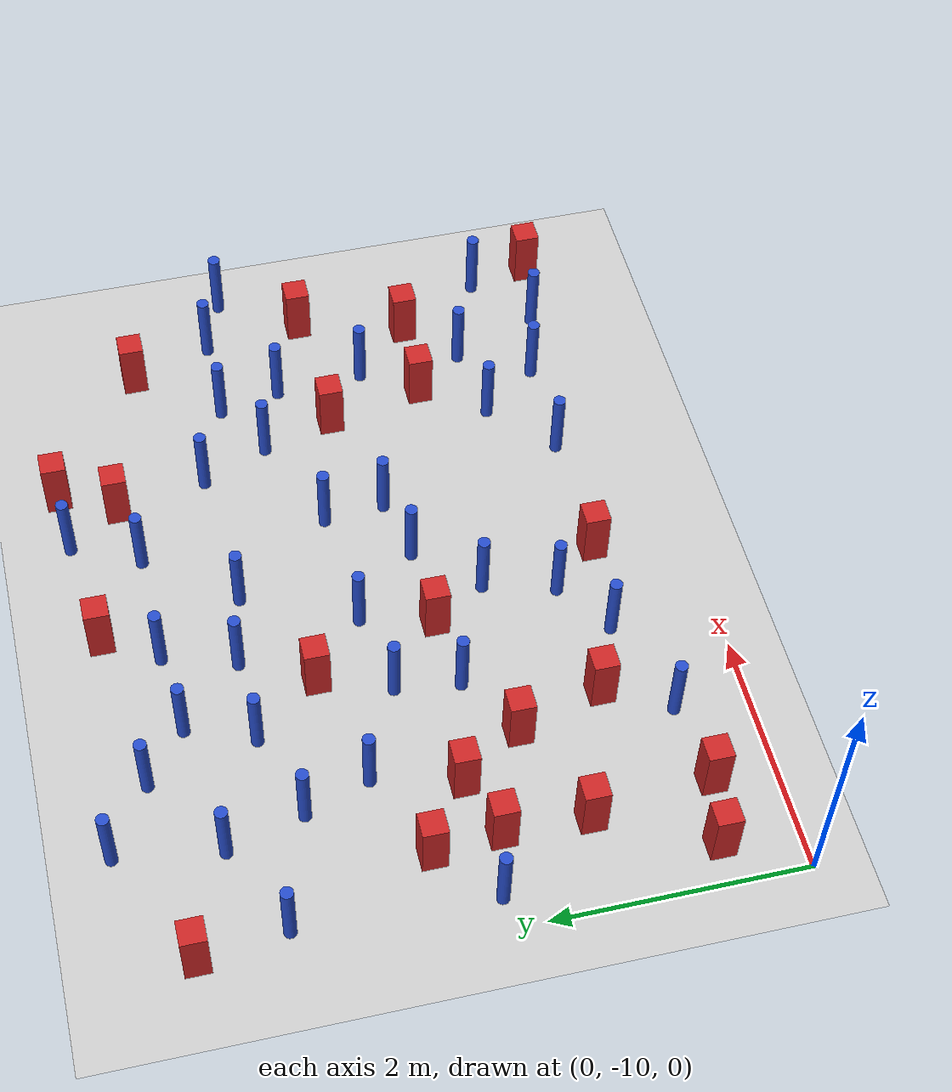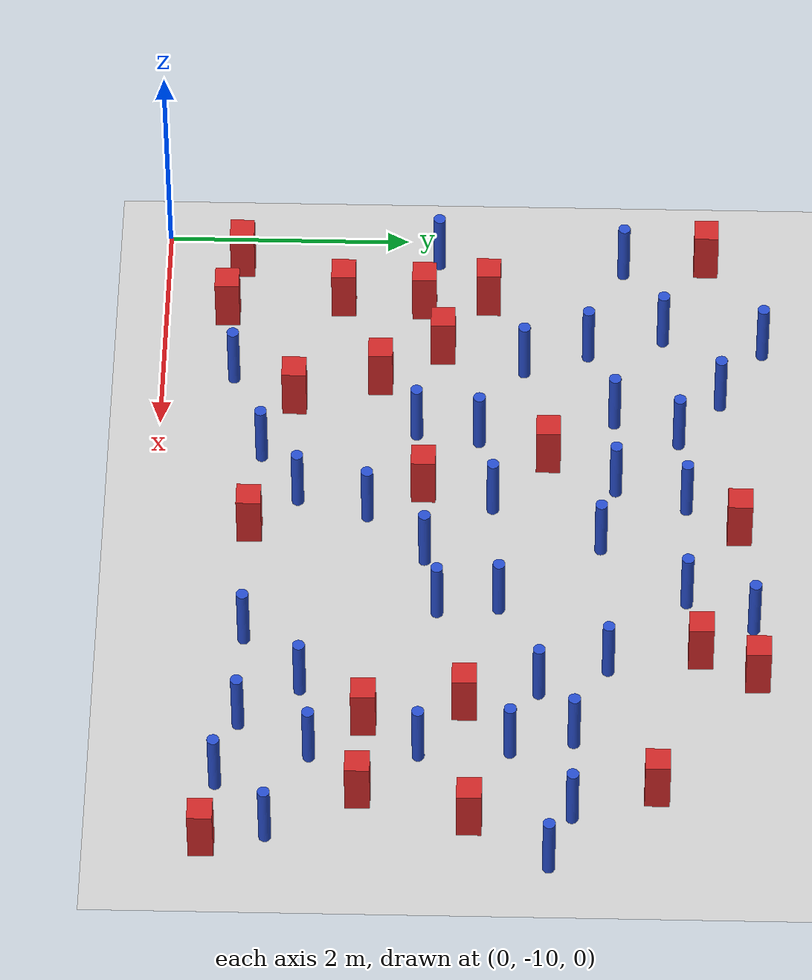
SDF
<sdf version="1.6">
 <world name="default">
  <model name="ground_plane">
   <static>1</static>
   <link name="link">
    <collision name="collision">
     <geometry><plane><normal>0 0 1</normal><size>100 100</size></plane></geometry>
     <surface><friction><ode><mu>100</mu><mu2>50</mu2></ode></friction></surface>
    </collision>
    <visual name="visual">
     <cast_shadows>0</cast_shadows>
     <geometry><plane><normal>0 0 1</normal><size>100 100</size></plane></geometry>
     <material>
      <ambient>1.0 1.0 1.0 1.0</ambient>
      <diffuse>0.8 0.8 0.8 1.0</diffuse>
      <specular>0.01 0.01 0.01 1.000000</specular>
     </material>
    </visual>
   </link>
  </model>
  <model name="pole_obstacle2">
   <static>true</static>
   <pose>2.84008630168 -5.65758874039 2.88873142074e-08 -9.90536689859e-09 4.60219948989e-07 -1.20965994961e-07</pose>
   <link name="link">
    <pose>0 0 0.3 0 -0 0</pose>
    <inertial>
     <mass>1</mass>
     <inertia><ixx>0.145833</ixx><ixy>0</ixy><ixz>0</ixz><iyy>0.145833</iyy><iyz>0</iyz><izz>0.125</izz></inertia>
    </inertial>
    <collision name="collision">
     <geometry><cylinder><radius>0.05</radius><length>.6</length></cylinder></geometry>
    </collision>
    <visual name="visual">
     <geometry><cylinder><radius>0.05</radius><length>.6</length></cylinder></geometry>
     <material>
      <script><name>Gazebo/Blue</name><uri>file://media/materials/scripts/gazebo.material</uri></script>
     </material>
    </visual>
   </link>
  </model>
  <model name="pole_obstacle4">
   <static>true</static>
   <pose>3.80544619655 -5.65283648893 2.88873142074e-08 -9.90536689859e-09 4.60219948989e-07 -1.20965994961e-07</pose>
   <link name="link">
    <pose>0 0 0.3 0 -0 0</pose>
    <inertial>
     <mass>1</mass>
     <inertia><ixx>0.145833</ixx><ixy>0</ixy><ixz>0</ixz><iyy>0.145833</iyy><iyz>0</iyz><izz>0.125</izz></inertia>
    </inertial>
    <collision name="collision">
     <geometry><cylinder><radius>0.05</radius><length>.6</length></cylinder></geometry>
    </collision>
    <visual name="visual">
     <geometry><cylinder><radius>0.05</radius><length>.6</length></cylinder></geometry>
     <material>
      <script><name>Gazebo/Blue</name><uri>file://media/materials/scripts/gazebo.material</uri></script>
     </material>
    </visual>
   </link>
  </model>
  <model name="pole_obstacle14">
   <static>true</static>
   <pose>3.40435855166 -7.7819171107 2.88873142074e-08 -9.90536689859e-09 4.60219948989e-07 -1.20965994961e-07</pose>
   <link name="link">
    <pose>0 0 0.3 0 -0 0</pose>
    <inertial>
     <mass>1</mass>
     <inertia><ixx>0.145833</ixx><ixy>0</ixy><ixz>0</ixz><iyy>0.145833</iyy><iyz>0</iyz><izz>0.125</izz></inertia>
    </inertial>
    <collision name="collision">
     <geometry><cylinder><radius>0.05</radius><length>.6</length></cylinder></geometry>
    </collision>
    <visual name="visual">
     <geometry><cylinder><radius>0.05</radius><length>.6</length></cylinder></geometry>
     <material>
      <script><name>Gazebo/Blue</name><uri>file://media/materials/scripts/gazebo.material</uri></script>
     </material>
    </visual>
   </link>
  </model>
  <model name="pole_obstacle16">
   <static>true</static>
   <pose>5.23208228533 -6.54759362288 2.88873142074e-08 -9.90536690842e-09 4.60219948965e-07 -1.20965994976e-07</pose>
   <link name="link">
    <pose>0 0 0.3 0 -0 0</pose>
    <inertial>
     <mass>1</mass>
     <inertia><ixx>0.145833</ixx><ixy>0</ixy><ixz>0</ixz><iyy>0.145833</iyy><iyz>0</iyz><izz>0.125</izz></inertia>
    </inertial>
    <collision name="collision">
     <geometry><cylinder><radius>0.05</radius><length>.6</length></cylinder></geometry>
    </collision>
    <visual name="visual">
     <geometry><cylinder><radius>0.05</radius><length>.6</length></cylinder></geometry>
     <material>
      <script><name>Gazebo/Blue</name><uri>file://media/materials/scripts/gazebo.material</uri></script>
     </material>
    </visual>
   </link>
  </model>
  <model name="pole_obstacle19">
   <static>true</static>
   <pose>1.94531949318 -6.25430891108 2.88873142074e-08 -9.90536689852e-09 4.60219948989e-07 -1.2096599496e-07</pose>
   <link name="link">
    <pose>0 0 0.3 0 -0 0</pose>
    <inertial>
     <mass>1</mass>
     <inertia><ixx>0.145833</ixx><ixy>0</ixy><ixz>0</ixz><iyy>0.145833</iyy><iyz>0</iyz><izz>0.125</izz></inertia>
    </inertial>
    <collision name="collision">
     <geometry><cylinder><radius>0.05</radius><length>.6</length></cylinder></geometry>
    </collision>
    <visual name="visual">
     <geometry><cylinder><radius>0.05</radius><length>.6</length></cylinder></geometry>
     <material>
      <script><name>Gazebo/Blue</name><uri>file://media/materials/scripts/gazebo.material</uri></script>
     </material>
    </visual>
   </link>
  </model>
  <model name="square_post_obstacle21">
   <static>true</static>
   <pose>5.08526483894 -8.22849400059 8.22691968438e-08 7.2212513382e-06 -7.54495500217e-07 2.29674213826e-05</pose>
   <link name="link">
    <pose>0 0 0.25 0 -0 0</pose>
    <inertial>
     <mass>100</mass>
     <inertia>
      <ixx>0.166667</ixx>
      <ixy>0</ixy>
      <ixz>0</ixz>
      <iyy>0.166667</iyy>
      <iyz>0</iyz>
      <izz>0.166667</izz>
     </inertia>
    </inertial>
    <collision name="collision"><geometry><box><size>.2 .2 .5</size></box></geometry></collision>
    <visual name="visual">
     <geometry><box><size>.2 .2 .5</size></box></geometry>
     <material>
      <script><name>Gazebo/Red</name><uri>file://media/materials/scripts/gazebo.material</uri></script>
     </material>
    </visual>
   </link>
  </model>
  <model name="square_post_obstacle23">
   <static>true</static>
   <pose>0.841744453199 -9.48429340773 8.22691968438e-08 7.22125133819e-06 -7.54495500217e-07 2.29674213826e-05</pose>
   <link name="link">
    <pose>0 0 0.25 0 -0 0</pose>
    <inertial>
     <mass>100</mass>
     <inertia>
      <ixx>0.166667</ixx>
      <ixy>0</ixy>
      <ixz>0</ixz>
      <iyy>0.166667</iyy>
      <iyz>0</iyz>
      <izz>0.166667</izz>
     </inertia>
    </inertial>
    <collision name="collision"><geometry><box><size>.2 .2 .5</size></box></geometry></collision>
    <visual name="visual">
     <geometry><box><size>.2 .2 .5</size></box></geometry>
     <material>
      <script><name>Gazebo/Red</name><uri>file://media/materials/scripts/gazebo.material</uri></script>
     </material>
    </visual>
   </link>
  </model>
  <model name="pole_obstacle32">
   <static>true</static>
   <pose>1.2296111837 -6.47852823251 2.88873142074e-08 -9.90536689852e-09 4.60219948989e-07 -1.2096599496e-07</pose>
   <link name="link">
    <pose>0 0 0.3 0 -0 0</pose>
    <inertial>
     <mass>1</mass>
     <inertia><ixx>0.145833</ixx><ixy>0</ixy><ixz>0</ixz><iyy>0.145833</iyy><iyz>0</iyz><izz>0.125</izz></inertia>
    </inertial>
    <collision name="collision">
     <geometry><cylinder><radius>0.05</radius><length>.6</length></cylinder></geometry>
    </collision>
    <visual name="visual">
     <geometry><cylinder><radius>0.05</radius><length>.6</length></cylinder></geometry>
     <material>
      <script><name>Gazebo/Blue</name><uri>file://media/materials/scripts/gazebo.material</uri></script>
     </material>
    </visual>
   </link>
  </model>
  <model name="square_post_obstacle29">
   <static>true</static>
   <pose>3.09581277703 -5.22648343051 8.22691968438e-08 7.2212513382e-06 -7.54495500217e-07 2.29674213826e-05</pose>
   <link name="link">
    <pose>0 0 0.25 0 -0 0</pose>
    <inertial>
     <mass>100</mass>
     <inertia>
      <ixx>0.166667</ixx>
      <ixy>0</ixy>
      <ixz>0</ixz>
      <iyy>0.166667</iyy>
      <iyz>0</iyz>
      <izz>0.166667</izz>
     </inertia>
    </inertial>
    <collision name="collision"><geometry><box><size>.2 .2 .5</size></box></geometry></collision>
    <visual name="visual">
     <geometry><box><size>.2 .2 .5</size></box></geometry>
     <material>
      <script><name>Gazebo/Red</name><uri>file://media/materials/scripts/gazebo.material</uri></script>
     </material>
    </visual>
   </link>
  </model>
  <model name="square_post_obstacle34">
   <static>true</static>
   <pose>6.04992247892 -7.36563365238 8.22691968438e-08 7.22125133819e-06 -7.54495500217e-07 2.29674213826e-05</pose>
   <link name="link">
    <pose>0 0 0.25 0 -0 0</pose>
    <inertial>
     <mass>100</mass>
     <inertia>
      <ixx>0.166667</ixx>
      <ixy>0</ixy>
      <ixz>0</ixz>
      <iyy>0.166667</iyy>
      <iyz>0</iyz>
      <izz>0.166667</izz>
     </inertia>
    </inertial>
    <collision name="collision"><geometry><box><size>.2 .2 .5</size></box></geometry></collision>
    <visual name="visual">
     <geometry><box><size>.2 .2 .5</size></box></geometry>
     <material>
      <script><name>Gazebo/Red</name><uri>file://media/materials/scripts/gazebo.material</uri></script>
     </material>
    </visual>
   </link>
  </model>
  <model name="square_post_obstacle35">
   <static>true</static>
   <pose>1.78558966195 -8.89482108866 8.22691968438e-08 7.22125133819e-06 -7.54495500217e-07 2.29674213826e-05</pose>
   <link name="link">
    <pose>0 0 0.25 0 -0 0</pose>
    <inertial>
     <mass>100</mass>
     <inertia>
      <ixx>0.166667</ixx>
      <ixy>0</ixy>
      <ixz>0</ixz>
      <iyy>0.166667</iyy>
      <iyz>0</iyz>
      <izz>0.166667</izz>
     </inertia>
    </inertial>
    <collision name="collision"><geometry><box><size>.2 .2 .5</size></box></geometry></collision>
    <visual name="visual">
     <geometry><box><size>.2 .2 .5</size></box></geometry>
     <material>
      <script><name>Gazebo/Red</name><uri>file://media/materials/scripts/gazebo.material</uri></script>
     </material>
    </visual>
   </link>
  </model>
  <model name="pole_obstacle46">
   <static>true</static>
   <pose>2.96377807754 -8.25905966666 2.88873142074e-08 -9.90536692318e-09 4.6021994893e-07 -1.20965994988e-07</pose>
   <link name="link">
    <pose>0 0 0.3 0 -0 0</pose>
    <inertial>
     <mass>1</mass>
     <inertia><ixx>0.145833</ixx><ixy>0</ixy><ixz>0</ixz><iyy>0.145833</iyy><iyz>0</iyz><izz>0.125</izz></inertia>
    </inertial>
    <collision name="collision">
     <geometry><cylinder><radius>0.05</radius><length>.6</length></cylinder></geometry>
    </collision>
    <visual name="visual">
     <geometry><cylinder><radius>0.05</radius><length>.6</length></cylinder></geometry>
     <material>
      <script><name>Gazebo/Blue</name><uri>file://media/materials/scripts/gazebo.material</uri></script>
     </material>
    </visual>
   </link>
  </model>
  <model name="square_post_obstacle39">
   <static>true</static>
   <pose>6.29553907464 -9.47275370029 8.22691968438e-08 7.2212513382e-06 -7.54495500217e-07 2.29674213826e-05</pose>
   <link name="link">
    <pose>0 0 0.25 0 -0 0</pose>
    <inertial>
     <mass>100</mass>
     <inertia>
      <ixx>0.166667</ixx>
      <ixy>0</ixy>
      <ixz>0</ixz>
      <iyy>0.166667</iyy>
      <iyz>0</iyz>
      <izz>0.166667</izz>
     </inertia>
    </inertial>
    <collision name="collision"><geometry><box><size>.2 .2 .5</size></box></geometry></collision>
    <visual name="visual">
     <geometry><box><size>.2 .2 .5</size></box></geometry>
     <material>
      <script><name>Gazebo/Red</name><uri>file://media/materials/scripts/gazebo.material</uri></script>
     </material>
    </visual>
   </link>
  </model>
  <model name="square_post_obstacle45">
   <static>true</static>
   <pose>4.5947123602 -5.08160202083 8.22691968438e-08 7.2212513382e-06 -7.54495500217e-07 2.29674213826e-05</pose>
   <link name="link">
    <pose>0 0 0.25 0 -0 0</pose>
    <inertial>
     <mass>100</mass>
     <inertia>
      <ixx>0.166667</ixx>
      <ixy>0</ixy>
      <ixz>0</ixz>
      <iyy>0.166667</iyy>
      <iyz>0</iyz>
      <izz>0.166667</izz>
     </inertia>
    </inertial>
    <collision name="collision"><geometry><box><size>.2 .2 .5</size></box></geometry></collision>
    <visual name="visual">
     <geometry><box><size>.2 .2 .5</size></box></geometry>
     <material>
      <script><name>Gazebo/Red</name><uri>file://media/materials/scripts/gazebo.material</uri></script>
     </material>
    </visual>
   </link>
  </model>
  <model name="square_post_obstacle46">
   <static>true</static>
   <pose>1.22898314889 -7.68098912082 8.22691968438e-08 7.2212513382e-06 -7.54495500217e-07 2.29674213826e-05</pose>
   <link name="link">
    <pose>0 0 0.25 0 -0 0</pose>
    <inertial>
     <mass>100</mass>
     <inertia>
      <ixx>0.166667</ixx>
      <ixy>0</ixy>
      <ixz>0</ixz>
      <iyy>0.166667</iyy>
      <iyz>0</iyz>
      <izz>0.166667</izz>
     </inertia>
    </inertial>
    <collision name="collision"><geometry><box><size>.2 .2 .5</size></box></geometry></collision>
    <visual name="visual">
     <geometry><box><size>.2 .2 .5</size></box></geometry>
     <material>
      <script><name>Gazebo/Red</name><uri>file://media/materials/scripts/gazebo.material</uri></script>
     </material>
    </visual>
   </link>
  </model>
  <model name="pole_obstacle66">
   <static>true</static>
   <pose>1.18282865238 -5.03434609527 2.88873142074e-08 -9.90536689852e-09 4.60219948989e-07 -1.2096599496e-07</pose>
   <link name="link">
    <pose>0 0 0.3 0 -0 0</pose>
    <inertial>
     <mass>1</mass>
     <inertia><ixx>0.145833</ixx><ixy>0</ixy><ixz>0</ixz><iyy>0.145833</iyy><iyz>0</iyz><izz>0.125</izz></inertia>
    </inertial>
    <collision name="collision">
     <geometry><cylinder><radius>0.05</radius><length>.6</length></cylinder></geometry>
    </collision>
    <visual name="visual">
     <geometry><cylinder><radius>0.05</radius><length>.6</length></cylinder></geometry>
     <material>
      <script><name>Gazebo/Blue</name><uri>file://media/materials/scripts/gazebo.material</uri></script>
     </material>
    </visual>
   </link>
  </model>
  <model name="square_post_obstacle55">
   <static>true</static>
   <pose>4.91738649186 -7.42713990306 8.22691968438e-08 7.22125133819e-06 -7.54495500217e-07 2.29674213826e-05</pose>
   <link name="link">
    <pose>0 0 0.25 0 -0 0</pose>
    <inertial>
     <mass>100</mass>
     <inertia>
      <ixx>0.166667</ixx>
      <ixy>0</ixy>
      <ixz>0</ixz>
      <iyy>0.166667</iyy>
      <iyz>0</iyz>
      <izz>0.166667</izz>
     </inertia>
    </inertial>
    <collision name="collision"><geometry><box><size>.2 .2 .5</size></box></geometry></collision>
    <visual name="visual">
     <geometry><box><size>.2 .2 .5</size></box></geometry>
     <material>
      <script><name>Gazebo/Red</name><uri>file://media/materials/scripts/gazebo.material</uri></script>
     </material>
    </visual>
   </link>
  </model>
  <model name="pole_obstacle69">
   <static>true</static>
   <pose>3.89376762896 -7.17106317651 2.88873142074e-08 -9.90536689859e-09 4.60219948989e-07 -1.20965994961e-07</pose>
   <link name="link">
    <pose>0 0 0.3 0 -0 0</pose>
    <inertial>
     <mass>1</mass>
     <inertia><ixx>0.145833</ixx><ixy>0</ixy><ixz>0</ixz><iyy>0.145833</iyy><iyz>0</iyz><izz>0.125</izz></inertia>
    </inertial>
    <collision name="collision">
     <geometry><cylinder><radius>0.05</radius><length>.6</length></cylinder></geometry>
    </collision>
    <visual name="visual">
     <geometry><cylinder><radius>0.05</radius><length>.6</length></cylinder></geometry>
     <material>
      <script><name>Gazebo/Blue</name><uri>file://media/materials/scripts/gazebo.material</uri></script>
     </material>
    </visual>
   </link>
  </model>
  <model name="pole_obstacle82">
   <static>true</static>
   <pose>4.06178586434 -5.11034556013 2.88873142074e-08 -9.90536690842e-09 4.60219948965e-07 -1.20965994976e-07</pose>
   <link name="link">
    <pose>0 0 0.3 0 -0 0</pose>
    <inertial>
     <mass>1</mass>
     <inertia><ixx>0.145833</ixx><ixy>0</ixy><ixz>0</ixz><iyy>0.145833</iyy><iyz>0</iyz><izz>0.125</izz></inertia>
    </inertial>
    <collision name="collision">
     <geometry><cylinder><radius>0.05</radius><length>.6</length></cylinder></geometry>
    </collision>
    <visual name="visual">
     <geometry><cylinder><radius>0.05</radius><length>.6</length></cylinder></geometry>
     <material>
      <script><name>Gazebo/Blue</name><uri>file://media/materials/scripts/gazebo.material</uri></script>
     </material>
    </visual>
   </link>
  </model>
  <model name="square_post_obstacle72">
   <static>true</static>
   <pose>5.80596797932 -8.25402476666 8.22691968438e-08 7.22125133819e-06 -7.54495500217e-07 2.29674213826e-05</pose>
   <link name="link">
    <pose>0 0 0.25 0 -0 0</pose>
    <inertial>
     <mass>100</mass>
     <inertia>
      <ixx>0.166667</ixx>
      <ixy>0</ixy>
      <ixz>0</ixz>
      <iyy>0.166667</iyy>
      <iyz>0</iyz>
      <izz>0.166667</izz>
     </inertia>
    </inertial>
    <collision name="collision"><geometry><box><size>.2 .2 .5</size></box></geometry></collision>
    <visual name="visual">
     <geometry><box><size>.2 .2 .5</size></box></geometry>
     <material>
      <script><name>Gazebo/Red</name><uri>file://media/materials/scripts/gazebo.material</uri></script>
     </material>
    </visual>
   </link>
  </model>
  <model name="pole_obstacle86">
   <static>true</static>
   <pose>1.73590130407 -5.38383068421 2.88873142074e-08 -9.90536689852e-09 4.60219948989e-07 -1.2096599496e-07</pose>
   <link name="link">
    <pose>0 0 0.3 0 -0 0</pose>
    <inertial>
     <mass>1</mass>
     <inertia><ixx>0.145833</ixx><ixy>0</ixy><ixz>0</ixz><iyy>0.145833</iyy><iyz>0</iyz><izz>0.125</izz></inertia>
    </inertial>
    <collision name="collision">
     <geometry><cylinder><radius>0.05</radius><length>.6</length></cylinder></geometry>
    </collision>
    <visual name="visual">
     <geometry><cylinder><radius>0.05</radius><length>.6</length></cylinder></geometry>
     <material>
      <script><name>Gazebo/Blue</name><uri>file://media/materials/scripts/gazebo.material</uri></script>
     </material>
    </visual>
   </link>
  </model>
  <model name="square_post_obstacle74">
   <static>true</static>
   <pose>1.56864107724 -8.18955456679 8.22691968438e-08 7.2212513382e-06 -7.54495500217e-07 2.29674213826e-05</pose>
   <link name="link">
    <pose>0 0 0.25 0 -0 0</pose>
    <inertial>
     <mass>100</mass>
     <inertia>
      <ixx>0.166667</ixx>
      <ixy>0</ixy>
      <ixz>0</ixz>
      <iyy>0.166667</iyy>
      <iyz>0</iyz>
      <izz>0.166667</izz>
     </inertia>
    </inertial>
    <collision name="collision"><geometry><box><size>.2 .2 .5</size></box></geometry></collision>
    <visual name="visual">
     <geometry><box><size>.2 .2 .5</size></box></geometry>
     <material>
      <script><name>Gazebo/Red</name><uri>file://media/materials/scripts/gazebo.material</uri></script>
     </material>
    </visual>
   </link>
  </model>
  <model name="pole_obstacle97">
   <static>true</static>
   <pose>1.05455284366 -5.85942085139 2.88873142074e-08 -9.90536689852e-09 4.60219948989e-07 -1.2096599496e-07</pose>
   <link name="link">
    <pose>0 0 0.3 0 -0 0</pose>
    <inertial>
     <mass>1</mass>
     <inertia><ixx>0.145833</ixx><ixy>0</ixy><ixz>0</ixz><iyy>0.145833</iyy><iyz>0</iyz><izz>0.125</izz></inertia>
    </inertial>
    <collision name="collision">
     <geometry><cylinder><radius>0.05</radius><length>.6</length></cylinder></geometry>
    </collision>
    <visual name="visual">
     <geometry><cylinder><radius>0.05</radius><length>.6</length></cylinder></geometry>
     <material>
      <script><name>Gazebo/Blue</name><uri>file://media/materials/scripts/gazebo.material</uri></script>
     </material>
    </visual>
   </link>
  </model>
  <model name="pole_obstacle107">
   <static>true</static>
   <pose>0.328052993588 -6.19242650753 2.88873142074e-08 -9.90536689683e-09 4.60219948993e-07 -1.20965994957e-07</pose>
   <link name="link">
    <pose>0 0 0.3 0 -0 0</pose>
    <inertial>
     <mass>1</mass>
     <inertia><ixx>0.145833</ixx><ixy>0</ixy><ixz>0</ixz><iyy>0.145833</iyy><iyz>0</iyz><izz>0.125</izz></inertia>
    </inertial>
    <collision name="collision">
     <geometry><cylinder><radius>0.05</radius><length>.6</length></cylinder></geometry>
    </collision>
    <visual name="visual">
     <geometry><cylinder><radius>0.05</radius><length>.6</length></cylinder></geometry>
     <material>
      <script><name>Gazebo/Blue</name><uri>file://media/materials/scripts/gazebo.material</uri></script>
     </material>
    </visual>
   </link>
  </model>
  <model name="pole_obstacle120">
   <static>true</static>
   <pose>4.74679029108 -6.83493175907 2.88873142074e-08 -9.90536690842e-09 4.60219948965e-07 -1.20965994976e-07</pose>
   <link name="link">
    <pose>0 0 0.3 0 -0 0</pose>
    <inertial>
     <mass>1</mass>
     <inertia><ixx>0.145833</ixx><ixy>0</ixy><ixz>0</ixz><iyy>0.145833</iyy><iyz>0</iyz><izz>0.125</izz></inertia>
    </inertial>
    <collision name="collision">
     <geometry><cylinder><radius>0.05</radius><length>.6</length></cylinder></geometry>
    </collision>
    <visual name="visual">
     <geometry><cylinder><radius>0.05</radius><length>.6</length></cylinder></geometry>
     <material>
      <script><name>Gazebo/Blue</name><uri>file://media/materials/scripts/gazebo.material</uri></script>
     </material>
    </visual>
   </link>
  </model>
  <model name="pole_obstacle121">
   <static>true</static>
   <pose>5.38310847871 -7.7849077942 2.88873142074e-08 -9.90536690842e-09 4.60219948965e-07 -1.20965994976e-07</pose>
   <link name="link">
    <pose>0 0 0.3 0 -0 0</pose>
    <inertial>
     <mass>1</mass>
     <inertia><ixx>0.145833</ixx><ixy>0</ixy><ixz>0</ixz><iyy>0.145833</iyy><iyz>0</iyz><izz>0.125</izz></inertia>
    </inertial>
    <collision name="collision">
     <geometry><cylinder><radius>0.05</radius><length>.6</length></cylinder></geometry>
    </collision>
    <visual name="visual">
     <geometry><cylinder><radius>0.05</radius><length>.6</length></cylinder></geometry>
     <material>
      <script><name>Gazebo/Blue</name><uri>file://media/materials/scripts/gazebo.material</uri></script>
     </material>
    </visual>
   </link>
  </model>
  <model name="pole_obstacle132">
   <static>true</static>
   <pose>6.45531773007 -6.73112084194 2.88873142074e-08 -9.90536690842e-09 4.60219948965e-07 -1.20965994976e-07</pose>
   <link name="link">
    <pose>0 0 0.3 0 -0 0</pose>
    <inertial>
     <mass>1</mass>
     <inertia><ixx>0.145833</ixx><ixy>0</ixy><ixz>0</ixz><iyy>0.145833</iyy><iyz>0</iyz><izz>0.125</izz></inertia>
    </inertial>
    <collision name="collision">
     <geometry><cylinder><radius>0.05</radius><length>.6</length></cylinder></geometry>
    </collision>
    <visual name="visual">
     <geometry><cylinder><radius>0.05</radius><length>.6</length></cylinder></geometry>
     <material>
      <script><name>Gazebo/Blue</name><uri>file://media/materials/scripts/gazebo.material</uri></script>
     </material>
    </visual>
   </link>
  </model>
  <model name="square_post_obstacle129">
   <static>true</static>
   <pose>3.13543514272 -9.21570825471 8.22691968438e-08 7.22125133819e-06 -7.54495500217e-07 2.29674213826e-05</pose>
   <link name="link">
    <pose>0 0 0.25 0 -0 0</pose>
    <inertial>
     <mass>100</mass>
     <inertia>
      <ixx>0.166667</ixx>
      <ixy>0</ixy>
      <ixz>0</ixz>
      <iyy>0.166667</iyy>
      <iyz>0</iyz>
      <izz>0.166667</izz>
     </inertia>
    </inertial>
    <collision name="collision"><geometry><box><size>.2 .2 .5</size></box></geometry></collision>
    <visual name="visual">
     <geometry><box><size>.2 .2 .5</size></box></geometry>
     <material>
      <script><name>Gazebo/Red</name><uri>file://media/materials/scripts/gazebo.material</uri></script>
     </material>
    </visual>
   </link>
  </model>
  <model name="pole_obstacle144">
   <static>true</static>
   <pose>2.80312207108 -8.83302583959 2.88873142074e-08 -9.90536692318e-09 4.6021994893e-07 -1.20965994988e-07</pose>
   <link name="link">
    <pose>0 0 0.3 0 -0 0</pose>
    <inertial>
     <mass>1</mass>
     <inertia><ixx>0.145833</ixx><ixy>0</ixy><ixz>0</ixz><iyy>0.145833</iyy><iyz>0</iyz><izz>0.125</izz></inertia>
    </inertial>
    <collision name="collision">
     <geometry><cylinder><radius>0.05</radius><length>.6</length></cylinder></geometry>
    </collision>
    <visual name="visual">
     <geometry><cylinder><radius>0.05</radius><length>.6</length></cylinder></geometry>
     <material>
      <script><name>Gazebo/Blue</name><uri>file://media/materials/scripts/gazebo.material</uri></script>
     </material>
    </visual>
   </link>
  </model>
  <model name="square_post_obstacle141">
   <static>true</static>
   <pose>4.36318477662 -5.53927192102 8.22691968438e-08 7.22125133819e-06 -7.54495500217e-07 2.29674213826e-05</pose>
   <link name="link">
    <pose>0 0 0.25 0 -0 0</pose>
    <inertial>
     <mass>100</mass>
     <inertia>
      <ixx>0.166667</ixx>
      <ixy>0</ixy>
      <ixz>0</ixz>
      <iyy>0.166667</iyy>
      <iyz>0</iyz>
      <izz>0.166667</izz>
     </inertia>
    </inertial>
    <collision name="collision"><geometry><box><size>.2 .2 .5</size></box></geometry></collision>
    <visual name="visual">
     <geometry><box><size>.2 .2 .5</size></box></geometry>
     <material>
      <script><name>Gazebo/Red</name><uri>file://media/materials/scripts/gazebo.material</uri></script>
     </material>
    </visual>
   </link>
  </model>
  <model name="pole_obstacle148">
   <static>true</static>
   <pose>2.15333753356 -5.72256687438 2.88873142074e-08 -9.90536689859e-09 4.60219948989e-07 -1.20965994961e-07</pose>
   <link name="link">
    <pose>0 0 0.3 0 -0 0</pose>
    <inertial>
     <mass>1</mass>
     <inertia><ixx>0.145833</ixx><ixy>0</ixy><ixz>0</ixz><iyy>0.145833</iyy><iyz>0</iyz><izz>0.125</izz></inertia>
    </inertial>
    <collision name="collision">
     <geometry><cylinder><radius>0.05</radius><length>.6</length></cylinder></geometry>
    </collision>
    <visual name="visual">
     <geometry><cylinder><radius>0.05</radius><length>.6</length></cylinder></geometry>
     <material>
      <script><name>Gazebo/Blue</name><uri>file://media/materials/scripts/gazebo.material</uri></script>
     </material>
    </visual>
   </link>
  </model>
  <model name="square_post_obstacle152">
   <static>true</static>
   <pose>0.724720998658 -8.52001083608 8.22691968438e-08 7.22125133819e-06 -7.54495500217e-07 2.29674213826e-05</pose>
   <link name="link">
    <pose>0 0 0.25 0 -0 0</pose>
    <inertial>
     <mass>100</mass>
     <inertia>
      <ixx>0.166667</ixx>
      <ixy>0</ixy>
      <ixz>0</ixz>
      <iyy>0.166667</iyy>
      <iyz>0</iyz>
      <izz>0.166667</izz>
     </inertia>
    </inertial>
    <collision name="collision"><geometry><box><size>.2 .2 .5</size></box></geometry></collision>
    <visual name="visual">
     <geometry><box><size>.2 .2 .5</size></box></geometry>
     <material>
      <script><name>Gazebo/Red</name><uri>file://media/materials/scripts/gazebo.material</uri></script>
     </material>
    </visual>
   </link>
  </model>
  <model name="pole_obstacle163">
   <static>true</static>
   <pose>2.66015981724 -6.23687542651 2.88873142074e-08 -9.90536689859e-09 4.60219948989e-07 -1.20965994961e-07</pose>
   <link name="link">
    <pose>0 0 0.3 0 -0 0</pose>
    <inertial>
     <mass>1</mass>
     <inertia><ixx>0.145833</ixx><ixy>0</ixy><ixz>0</ixz><iyy>0.145833</iyy><iyz>0</iyz><izz>0.125</izz></inertia>
    </inertial>
    <collision name="collision">
     <geometry><cylinder><radius>0.05</radius><length>.6</length></cylinder></geometry>
    </collision>
    <visual name="visual">
     <geometry><cylinder><radius>0.05</radius><length>.6</length></cylinder></geometry>
     <material>
      <script><name>Gazebo/Blue</name><uri>file://media/materials/scripts/gazebo.material</uri></script>
     </material>
    </visual>
   </link>
  </model>
  <model name="pole_obstacle164">
   <static>true</static>
   <pose>2.09666196747 -7.87846331957 2.88873142074e-08 -9.90536689859e-09 4.60219948989e-07 -1.20965994961e-07</pose>
   <link name="link">
    <pose>0 0 0.3 0 -0 0</pose>
    <inertial>
     <mass>1</mass>
     <inertia><ixx>0.145833</ixx><ixy>0</ixy><ixz>0</ixz><iyy>0.145833</iyy><iyz>0</iyz><izz>0.125</izz></inertia>
    </inertial>
    <collision name="collision">
     <geometry><cylinder><radius>0.05</radius><length>.6</length></cylinder></geometry>
    </collision>
    <visual name="visual">
     <geometry><cylinder><radius>0.05</radius><length>.6</length></cylinder></geometry>
     <material>
      <script><name>Gazebo/Blue</name><uri>file://media/materials/scripts/gazebo.material</uri></script>
     </material>
    </visual>
   </link>
  </model>
  <model name="pole_obstacle169">
   <static>true</static>
   <pose>2.1654644331 -7.36292563188 2.88873142074e-08 -9.90536689859e-09 4.60219948989e-07 -1.20965994961e-07</pose>
   <link name="link">
    <pose>0 0 0.3 0 -0 0</pose>
    <inertial>
     <mass>1</mass>
     <inertia><ixx>0.145833</ixx><ixy>0</ixy><ixz>0</ixz><iyy>0.145833</iyy><iyz>0</iyz><izz>0.125</izz></inertia>
    </inertial>
    <collision name="collision">
     <geometry><cylinder><radius>0.05</radius><length>.6</length></cylinder></geometry>
    </collision>
    <visual name="visual">
     <geometry><cylinder><radius>0.05</radius><length>.6</length></cylinder></geometry>
     <material>
      <script><name>Gazebo/Blue</name><uri>file://media/materials/scripts/gazebo.material</uri></script>
     </material>
    </visual>
   </link>
  </model>
  <model name="pole_obstacle174">
   <static>true</static>
   <pose>2.86169717265 -7.23828473017 2.88873142074e-08 -9.90536689859e-09 4.60219948989e-07 -1.20965994961e-07</pose>
   <link name="link">
    <pose>0 0 0.3 0 -0 0</pose>
    <inertial>
     <mass>1</mass>
     <inertia><ixx>0.145833</ixx><ixy>0</ixy><ixz>0</ixz><iyy>0.145833</iyy><iyz>0</iyz><izz>0.125</izz></inertia>
    </inertial>
    <collision name="collision">
     <geometry><cylinder><radius>0.05</radius><length>.6</length></cylinder></geometry>
    </collision>
    <visual name="visual">
     <geometry><cylinder><radius>0.05</radius><length>.6</length></cylinder></geometry>
     <material>
      <script><name>Gazebo/Blue</name><uri>file://media/materials/scripts/gazebo.material</uri></script>
     </material>
    </visual>
   </link>
  </model>
  <model name="pole_obstacle177">
   <static>true</static>
   <pose>4.24056258955 -9.21942518874 2.88873142074e-08 -9.9053668967e-09 4.60219948993e-07 -1.20965994957e-07</pose>
   <link name="link">
    <pose>0 0 0.3 0 -0 0</pose>
    <inertial>
     <mass>1</mass>
     <inertia><ixx>0.145833</ixx><ixy>0</ixy><ixz>0</ixz><iyy>0.145833</iyy><iyz>0</iyz><izz>0.125</izz></inertia>
    </inertial>
    <collision name="collision">
     <geometry><cylinder><radius>0.05</radius><length>.6</length></cylinder></geometry>
    </collision>
    <visual name="visual">
     <geometry><cylinder><radius>0.05</radius><length>.6</length></cylinder></geometry>
     <material>
      <script><name>Gazebo/Blue</name><uri>file://media/materials/scripts/gazebo.material</uri></script>
     </material>
    </visual>
   </link>
  </model>
  <model name="pole_obstacle178">
   <static>true</static>
   <pose>5.96997788932 -6.55258403147 2.88873142074e-08 -9.90536690842e-09 4.60219948965e-07 -1.20965994976e-07</pose>
   <link name="link">
    <pose>0 0 0.3 0 -0 0</pose>
    <inertial>
     <mass>1</mass>
     <inertia><ixx>0.145833</ixx><ixy>0</ixy><ixz>0</ixz><iyy>0.145833</iyy><iyz>0</iyz><izz>0.125</izz></inertia>
    </inertial>
    <collision name="collision">
     <geometry><cylinder><radius>0.05</radius><length>.6</length></cylinder></geometry>
    </collision>
    <visual name="visual">
     <geometry><cylinder><radius>0.05</radius><length>.6</length></cylinder></geometry>
     <material>
      <script><name>Gazebo/Blue</name><uri>file://media/materials/scripts/gazebo.material</uri></script>
     </material>
    </visual>
   </link>
  </model>
  <model name="pole_obstacle180">
   <static>true</static>
   <pose>1.51875578712 -9.40721596844 2.88873142074e-08 -9.90536690474e-09 4.60219948974e-07 -1.2096599497e-07</pose>
   <link name="link">
    <pose>0 0 0.3 0 -0 0</pose>
    <inertial>
     <mass>1</mass>
     <inertia><ixx>0.145833</ixx><ixy>0</ixy><ixz>0</ixz><iyy>0.145833</iyy><iyz>0</iyz><izz>0.125</izz></inertia>
    </inertial>
    <collision name="collision">
     <geometry><cylinder><radius>0.05</radius><length>.6</length></cylinder></geometry>
    </collision>
    <visual name="visual">
     <geometry><cylinder><radius>0.05</radius><length>.6</length></cylinder></geometry>
     <material>
      <script><name>Gazebo/Blue</name><uri>file://media/materials/scripts/gazebo.material</uri></script>
     </material>
    </visual>
   </link>
  </model>
  <model name="pole_obstacle184">
   <static>true</static>
   <pose>3.2657829541 -6.35283299221 2.88873142074e-08 -9.90536689859e-09 4.60219948989e-07 -1.20965994961e-07</pose>
   <link name="link">
    <pose>0 0 0.3 0 -0 0</pose>
    <inertial>
     <mass>1</mass>
     <inertia><ixx>0.145833</ixx><ixy>0</ixy><ixz>0</ixz><iyy>0.145833</iyy><iyz>0</iyz><izz>0.125</izz></inertia>
    </inertial>
    <collision name="collision">
     <geometry><cylinder><radius>0.05</radius><length>.6</length></cylinder></geometry>
    </collision>
    <visual name="visual">
     <geometry><cylinder><radius>0.05</radius><length>.6</length></cylinder></geometry>
     <material>
      <script><name>Gazebo/Blue</name><uri>file://media/materials/scripts/gazebo.material</uri></script>
     </material>
    </visual>
   </link>
  </model>
  <model name="square_post_obstacle184">
   <static>true</static>
   <pose>2.36333474792 -6.79265435655 8.22691968438e-08 7.2212513382e-06 -7.54495500217e-07 2.29674213826e-05</pose>
   <link name="link">
    <pose>0 0 0.25 0 -0 0</pose>
    <inertial>
     <mass>100</mass>
     <inertia>
      <ixx>0.166667</ixx>
      <ixy>0</ixy>
      <ixz>0</ixz>
      <iyy>0.166667</iyy>
      <iyz>0</iyz>
      <izz>0.166667</izz>
     </inertia>
    </inertial>
    <collision name="collision"><geometry><box><size>.2 .2 .5</size></box></geometry></collision>
    <visual name="visual">
     <geometry><box><size>.2 .2 .5</size></box></geometry>
     <material>
      <script><name>Gazebo/Red</name><uri>file://media/materials/scripts/gazebo.material</uri></script>
     </material>
    </visual>
   </link>
  </model>
  <model name="square_post_obstacle185">
   <static>true</static>
   <pose>0.240333128248 -5.50463595181 8.22691968438e-08 7.2212513382e-06 -7.54495500217e-07 2.29674213826e-05</pose>
   <link name="link">
    <pose>0 0 0.25 0 -0 0</pose>
    <inertial>
     <mass>100</mass>
     <inertia>
      <ixx>0.166667</ixx>
      <ixy>0</ixy>
      <ixz>0</ixz>
      <iyy>0.166667</iyy>
      <iyz>0</iyz>
      <izz>0.166667</izz>
     </inertia>
    </inertial>
    <collision name="collision"><geometry><box><size>.2 .2 .5</size></box></geometry></collision>
    <visual name="visual">
     <geometry><box><size>.2 .2 .5</size></box></geometry>
     <material>
      <script><name>Gazebo/Red</name><uri>file://media/materials/scripts/gazebo.material</uri></script>
     </material>
    </visual>
   </link>
  </model>
  <model name="square_post_obstacle194">
   <static>true</static>
   <pose>0.742146275166 -7.8475119705 8.22691968438e-08 7.2212513382e-06 -7.54495500217e-07 2.29674213826e-05</pose>
   <link name="link">
    <pose>0 0 0.25 0 -0 0</pose>
    <inertial>
     <mass>100</mass>
     <inertia>
      <ixx>0.166667</ixx>
      <ixy>0</ixy>
      <ixz>0</ixz>
      <iyy>0.166667</iyy>
      <iyz>0</iyz>
      <izz>0.166667</izz>
     </inertia>
    </inertial>
    <collision name="collision"><geometry><box><size>.2 .2 .5</size></box></geometry></collision>
    <visual name="visual">
     <geometry><box><size>.2 .2 .5</size></box></geometry>
     <material>
      <script><name>Gazebo/Red</name><uri>file://media/materials/scripts/gazebo.material</uri></script>
     </material>
    </visual>
   </link>
  </model>
  <model name="square_post_obstacle196">
   <static>true</static>
   <pose>0.69146860673 -7.31465699798 8.22691968438e-08 7.22125133819e-06 -7.54495500217e-07 2.29674213826e-05</pose>
   <link name="link">
    <pose>0 0 0.25 0 -0 0</pose>
    <inertial>
     <mass>100</mass>
     <inertia>
      <ixx>0.166667</ixx>
      <ixy>0</ixy>
      <ixz>0</ixz>
      <iyy>0.166667</iyy>
      <iyz>0</iyz>
      <izz>0.166667</izz>
     </inertia>
    </inertial>
    <collision name="collision"><geometry><box><size>.2 .2 .5</size></box></geometry></collision>
    <visual name="visual">
     <geometry><box><size>.2 .2 .5</size></box></geometry>
     <material>
      <script><name>Gazebo/Red</name><uri>file://media/materials/scripts/gazebo.material</uri></script>
     </material>
    </visual>
   </link>
  </model>
  <model name="pole_obstacle190">
   <static>true</static>
   <pose>4.50419752845 -6.2815873111 2.88873142074e-08 -9.90536690842e-09 4.60219948965e-07 -1.20965994976e-07</pose>
   <link name="link">
    <pose>0 0 0.3 0 -0 0</pose>
    <inertial>
     <mass>1</mass>
     <inertia><ixx>0.145833</ixx><ixy>0</ixy><ixz>0</ixz><iyy>0.145833</iyy><iyz>0</iyz><izz>0.125</izz></inertia>
    </inertial>
    <collision name="collision">
     <geometry><cylinder><radius>0.05</radius><length>.6</length></cylinder></geometry>
    </collision>
    <visual name="visual">
     <geometry><cylinder><radius>0.05</radius><length>.6</length></cylinder></geometry>
     <material>
      <script><name>Gazebo/Blue</name><uri>file://media/materials/scripts/gazebo.material</uri></script>
     </material>
    </visual>
   </link>
  </model>
  <model name="square_post_obstacle204">
   <static>true</static>
   <pose>2.69614027403 -7.80886110104 8.22691968438e-08 7.2212513382e-06 -7.54495500217e-07 2.29674213826e-05</pose>
   <link name="link">
    <pose>0 0 0.25 0 -0 0</pose>
    <inertial>
     <mass>100</mass>
     <inertia>
      <ixx>0.166667</ixx>
      <ixy>0</ixy>
      <ixz>0</ixz>
      <iyy>0.166667</iyy>
      <iyz>0</iyz>
      <izz>0.166667</izz>
     </inertia>
    </inertial>
    <collision name="collision"><geometry><box><size>.2 .2 .5</size></box></geometry></collision>
    <visual name="visual">
     <geometry><box><size>.2 .2 .5</size></box></geometry>
     <material>
      <script><name>Gazebo/Red</name><uri>file://media/materials/scripts/gazebo.material</uri></script>
     </material>
    </visual>
   </link>
  </model>
  <model name="pole_obstacle194">
   <static>true</static>
   <pose>4.74571153367 -8.74996909655 2.88873142074e-08 -9.9053668967e-09 4.60219948993e-07 -1.20965994957e-07</pose>
   <link name="link">
    <pose>0 0 0.3 0 -0 0</pose>
    <inertial>
     <mass>1</mass>
     <inertia><ixx>0.145833</ixx><ixy>0</ixy><ixz>0</ixz><iyy>0.145833</iyy><iyz>0</iyz><izz>0.125</izz></inertia>
    </inertial>
    <collision name="collision">
     <geometry><cylinder><radius>0.05</radius><length>.6</length></cylinder></geometry>
    </collision>
    <visual name="visual">
     <geometry><cylinder><radius>0.05</radius><length>.6</length></cylinder></geometry>
     <material>
      <script><name>Gazebo/Blue</name><uri>file://media/materials/scripts/gazebo.material</uri></script>
     </material>
    </visual>
   </link>
  </model>
  <model name="pole_obstacle203">
   <static>true</static>
   <pose>5.34057095984 -7.05499026097 2.88873142074e-08 -9.90536690842e-09 4.60219948965e-07 -1.20965994976e-07</pose>
   <link name="link">
    <pose>0 0 0.3 0 -0 0</pose>
    <inertial>
     <mass>1</mass>
     <inertia><ixx>0.145833</ixx><ixy>0</ixy><ixz>0</ixz><iyy>0.145833</iyy><iyz>0</iyz><izz>0.125</izz></inertia>
    </inertial>
    <collision name="collision">
     <geometry><cylinder><radius>0.05</radius><length>.6</length></cylinder></geometry>
    </collision>
    <visual name="visual">
     <geometry><cylinder><radius>0.05</radius><length>.6</length></cylinder></geometry>
     <material>
      <script><name>Gazebo/Blue</name><uri>file://media/materials/scripts/gazebo.material</uri></script>
     </material>
    </visual>
   </link>
  </model>
  <model name="pole_obstacle205">
   <static>true</static>
   <pose>6.19749693615 -8.97431523941 2.88873142074e-08 -9.9053668967e-09 4.60219948993e-07 -1.20965994957e-07</pose>
   <link name="link">
    <pose>0 0 0.3 0 -0 0</pose>
    <inertial>
     <mass>1</mass>
     <inertia><ixx>0.145833</ixx><ixy>0</ixy><ixz>0</ixz><iyy>0.145833</iyy><iyz>0</iyz><izz>0.125</izz></inertia>
    </inertial>
    <collision name="collision">
     <geometry><cylinder><radius>0.05</radius><length>.6</length></cylinder></geometry>
    </collision>
    <visual name="visual">
     <geometry><cylinder><radius>0.05</radius><length>.6</length></cylinder></geometry>
     <material>
      <script><name>Gazebo/Blue</name><uri>file://media/materials/scripts/gazebo.material</uri></script>
     </material>
    </visual>
   </link>
  </model>
  <model name="pole_obstacle206">
   <static>true</static>
   <pose>5.40935169805 -8.65487182242 2.88873142074e-08 -9.9053668967e-09 4.60219948993e-07 -1.20965994957e-07</pose>
   <link name="link">
    <pose>0 0 0.3 0 -0 0</pose>
    <inertial>
     <mass>1</mass>
     <inertia><ixx>0.145833</ixx><ixy>0</ixy><ixz>0</ixz><iyy>0.145833</iyy><iyz>0</iyz><izz>0.125</izz></inertia>
    </inertial>
    <collision name="collision">
     <geometry><cylinder><radius>0.05</radius><length>.6</length></cylinder></geometry>
    </collision>
    <visual name="visual">
     <geometry><cylinder><radius>0.05</radius><length>.6</length></cylinder></geometry>
     <material>
      <script><name>Gazebo/Blue</name><uri>file://media/materials/scripts/gazebo.material</uri></script>
     </material>
    </visual>
   </link>
  </model>
  <model name="pole_obstacle207">
   <static>true</static>
   <pose>2.3484217393 -9.14629160216 2.88873142074e-08 -9.90536692318e-09 4.6021994893e-07 -1.20965994988e-07</pose>
   <link name="link">
    <pose>0 0 0.3 0 -0 0</pose>
    <inertial>
     <mass>1</mass>
     <inertia><ixx>0.145833</ixx><ixy>0</ixy><ixz>0</ixz><iyy>0.145833</iyy><iyz>0</iyz><izz>0.125</izz></inertia>
    </inertial>
    <collision name="collision">
     <geometry><cylinder><radius>0.05</radius><length>.6</length></cylinder></geometry>
    </collision>
    <visual name="visual">
     <geometry><cylinder><radius>0.05</radius><length>.6</length></cylinder></geometry>
     <material>
      <script><name>Gazebo/Blue</name><uri>file://media/materials/scripts/gazebo.material</uri></script>
     </material>
    </visual>
   </link>
  </model>
  <model name="square_post_obstacle214">
   <static>true</static>
   <pose>0.311302101424 -9.37920465775 8.22691968438e-08 7.2212513382e-06 -7.54495500217e-07 2.29674213826e-05</pose>
   <link name="link">
    <pose>0 0 0.25 0 -0 0</pose>
    <inertial>
     <mass>100</mass>
     <inertia>
      <ixx>0.166667</ixx>
      <ixy>0</ixy>
      <ixz>0</ixz>
      <iyy>0.166667</iyy>
      <iyz>0</iyz>
      <izz>0.166667</izz>
     </inertia>
    </inertial>
    <collision name="collision"><geometry><box><size>.2 .2 .5</size></box></geometry></collision>
    <visual name="visual">
     <geometry><box><size>.2 .2 .5</size></box></geometry>
     <material>
      <script><name>Gazebo/Red</name><uri>file://media/materials/scripts/gazebo.material</uri></script>
     </material>
    </visual>
   </link>
  </model>
  <model name="square_post_obstacle219">
   <static>true</static>
   <pose>5.73691741026 -5.88194357052 8.22691968438e-08 7.22125133819e-06 -7.54495500217e-07 2.29674213826e-05</pose>
   <link name="link">
    <pose>0 0 0.25 0 -0 0</pose>
    <inertial>
     <mass>100</mass>
     <inertia>
      <ixx>0.166667</ixx>
      <ixy>0</ixy>
      <ixz>0</ixz>
      <iyy>0.166667</iyy>
      <iyz>0</iyz>
      <izz>0.166667</izz>
     </inertia>
    </inertial>
    <collision name="collision"><geometry><box><size>.2 .2 .5</size></box></geometry></collision>
    <visual name="visual">
     <geometry><box><size>.2 .2 .5</size></box></geometry>
     <material>
      <script><name>Gazebo/Red</name><uri>file://media/materials/scripts/gazebo.material</uri></script>
     </material>
    </visual>
   </link>
  </model>
  <model name="pole_obstacle213">
   <static>true</static>
   <pose>1.41292000913 -7.00575997959 2.88873142074e-08 -9.90536689786e-09 4.6021994899e-07 -1.2096599496e-07</pose>
   <link name="link">
    <pose>0 0 0.3 0 -0 0</pose>
    <inertial>
     <mass>1</mass>
     <inertia><ixx>0.145833</ixx><ixy>0</ixy><ixz>0</ixz><iyy>0.145833</iyy><iyz>0</iyz><izz>0.125</izz></inertia>
    </inertial>
    <collision name="collision">
     <geometry><cylinder><radius>0.05</radius><length>.6</length></cylinder></geometry>
    </collision>
    <visual name="visual">
     <geometry><cylinder><radius>0.05</radius><length>.6</length></cylinder></geometry>
     <material>
      <script><name>Gazebo/Blue</name><uri>file://media/materials/scripts/gazebo.material</uri></script>
     </material>
    </visual>
   </link>
  </model>
  <model name="pole_obstacle225">
   <static>true</static>
   <pose>5.10115000913 -9.23017997959 2.88873142074e-08 -9.9053668967e-09 4.60219948993e-07 -1.20965994957e-07</pose>
   <link name="link">
    <pose>0 0 0.3 0 -0 0</pose>
    <inertial>
     <mass>1</mass>
     <inertia><ixx>0.145833</ixx><ixy>0</ixy><ixz>0</ixz><iyy>0.145833</iyy><iyz>0</iyz><izz>0.125</izz></inertia>
    </inertial>
    <collision name="collision">
     <geometry><cylinder><radius>0.05</radius><length>.6</length></cylinder></geometry>
    </collision>
    <visual name="visual">
     <geometry><cylinder><radius>0.05</radius><length>.6</length></cylinder></geometry>
     <material>
      <script><name>Gazebo/Blue</name><uri>file://media/materials/scripts/gazebo.material</uri></script>
     </material>
    </visual>
   </link>
  </model>
  <model name="pole_obstacle227">
   <static>true</static>
   <pose>5.69660000913 -9.39043997959 2.88873142074e-08 -9.9053668967e-09 4.60219948993e-07 -1.20965994957e-07</pose>
   <link name="link">
    <pose>0 0 0.3 0 -0 0</pose>
    <inertial>
     <mass>1</mass>
     <inertia><ixx>0.145833</ixx><ixy>0</ixy><ixz>0</ixz><iyy>0.145833</iyy><iyz>0</iyz><izz>0.125</izz></inertia>
    </inertial>
    <collision name="collision">
     <geometry><cylinder><radius>0.05</radius><length>.6</length></cylinder></geometry>
    </collision>
    <visual name="visual">
     <geometry><cylinder><radius>0.05</radius><length>.6</length></cylinder></geometry>
     <material>
      <script><name>Gazebo/Blue</name><uri>file://media/materials/scripts/gazebo.material</uri></script>
     </material>
    </visual>
   </link>
  </model>
  <model name="pole_obstacle230">
   <static>true</static>
   <pose>3.93825000913 -7.66965997959 2.88873142074e-08 -9.90536689859e-09 4.60219948989e-07 -1.20965994961e-07</pose>
   <link name="link">
    <pose>0 0 0.3 0 -0 0</pose>
    <inertial>
     <mass>1</mass>
     <inertia><ixx>0.145833</ixx><ixy>0</ixy><ixz>0</ixz><iyy>0.145833</iyy><iyz>0</iyz><izz>0.125</izz></inertia>
    </inertial>
    <collision name="collision">
     <geometry><cylinder><radius>0.05</radius><length>.6</length></cylinder></geometry>
    </collision>
    <visual name="visual">
     <geometry><cylinder><radius>0.05</radius><length>.6</length></cylinder></geometry>
     <material>
      <script><name>Gazebo/Blue</name><uri>file://media/materials/scripts/gazebo.material</uri></script>
     </material>
    </visual>
   </link>
  </model>
  <model name="pole_obstacle231">
   <static>true</static>
   <pose>0.250646009133 -7.73263997959 2.88873142074e-08 -9.90536689599e-09 4.60219948995e-07 -1.20965994956e-07</pose>
   <link name="link">
    <pose>0 0 0.3 0 -0 0</pose>
    <inertial>
     <mass>1</mass>
     <inertia><ixx>0.145833</ixx><ixy>0</ixy><ixz>0</ixz><iyy>0.145833</iyy><iyz>0</iyz><izz>0.125</izz></inertia>
    </inertial>
    <collision name="collision">
     <geometry><cylinder><radius>0.05</radius><length>.6</length></cylinder></geometry>
    </collision>
    <visual name="visual">
     <geometry><cylinder><radius>0.05</radius><length>.6</length></cylinder></geometry>
     <material>
      <script><name>Gazebo/Blue</name><uri>file://media/materials/scripts/gazebo.material</uri></script>
     </material>
    </visual>
   </link>
  </model>
 </world>
</sdf>
